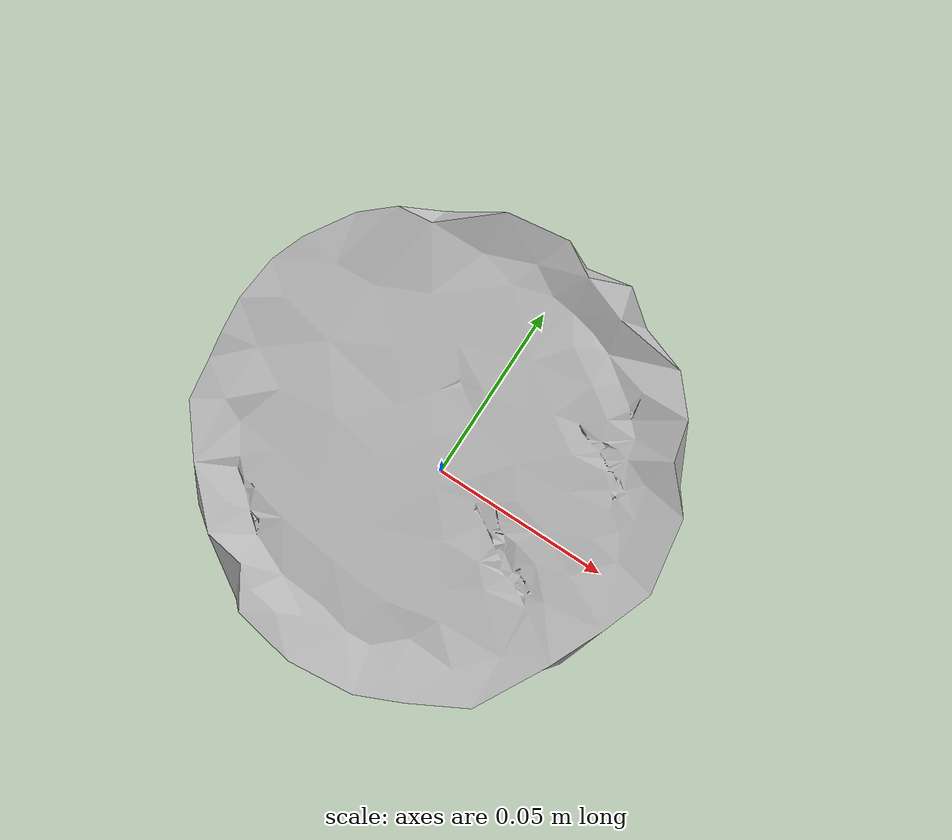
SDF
<?xml version="1.0" ?>
<sdf version="1.7">
    <model name="002_master_chef_can">
        <link name="002_master_chef_can_link">
            <inertial>
                <pose>-0.001430746885156838 0.00048514434405273803 -0.002915754175166822 0.0 0.0 0.0</pose>
                <mass>1.0</mass>
                <inertia>0.002148743992557147 9.418062604909454e-07 -1.33512640676406e-06 0.0021443693881043786 4.6285887508332263e-07 0.0012524593202664761</inertia>
            </inertial>
            <collision name="002_master_chef_can_collision">
                <surface>
                    <friction>
                        <ode>
                            <mu>1</mu>
                            <mu2>1</mu2>
                        </ode>
                    </friction>
                </surface>
                <max_contact>1</max_contact>
                <geometry>
                    <mesh>
                        <uri>model://002_master_chef_can/textured.obj</uri>
                    </mesh>
                </geometry>
            </collision>
            <visual name="002_master_chef_can_visual">
                <geometry>
                    <mesh>
                        <uri>model://002_master_chef_can/textured.obj</uri>
                    </mesh>
                </geometry>
            </visual>
        </link>

        <joint name="world_to_base_link" type="fixed">
            <parent>world</parent>
            <child>002_master_chef_can_link</child>
        </joint>
    </model>
</sdf>
